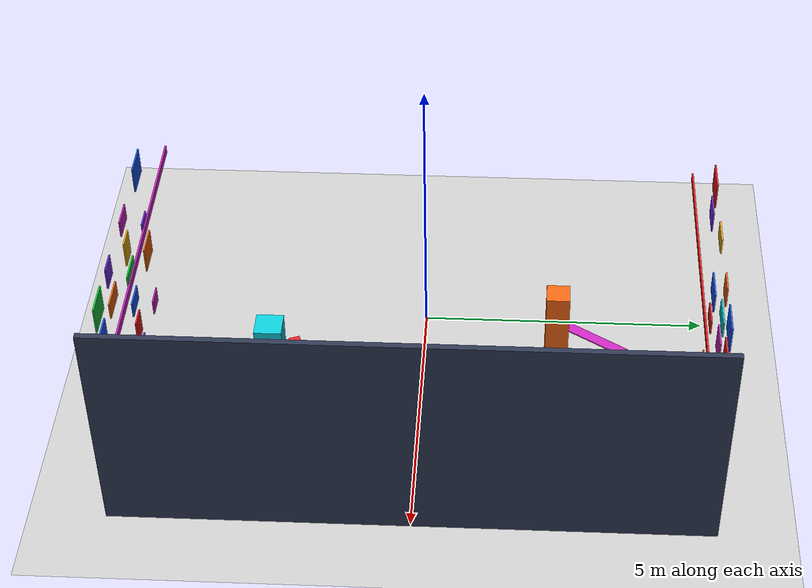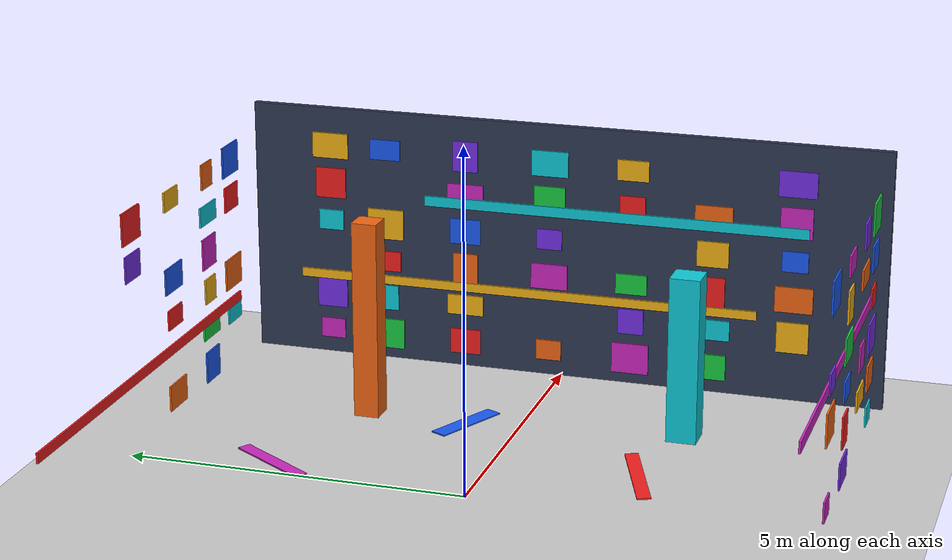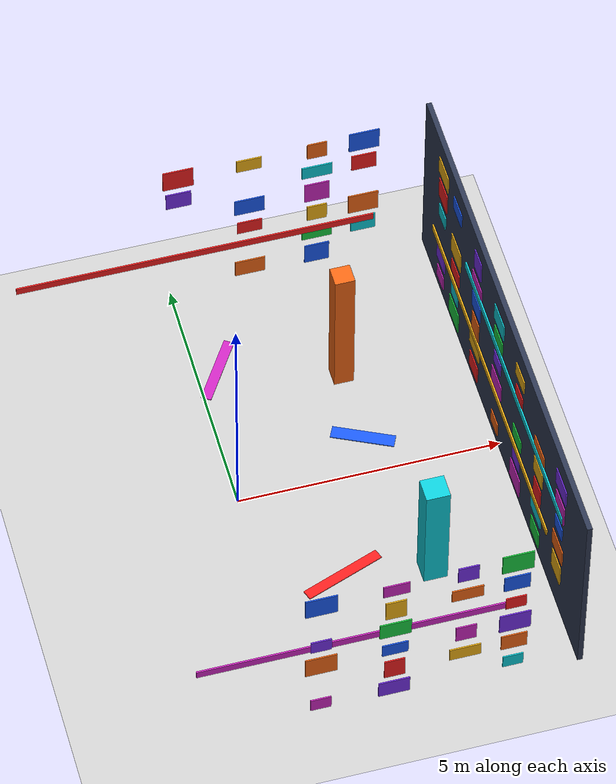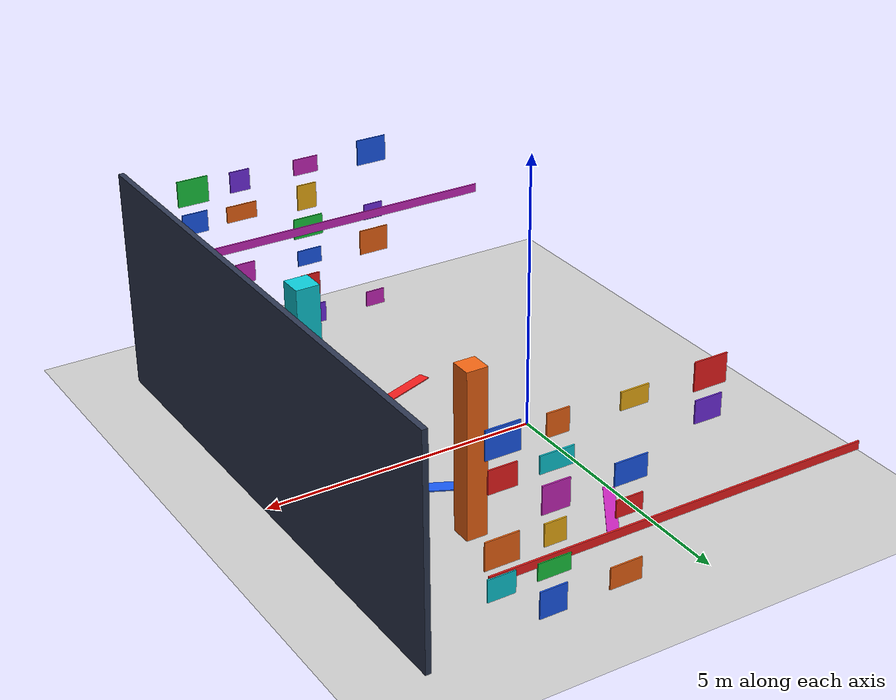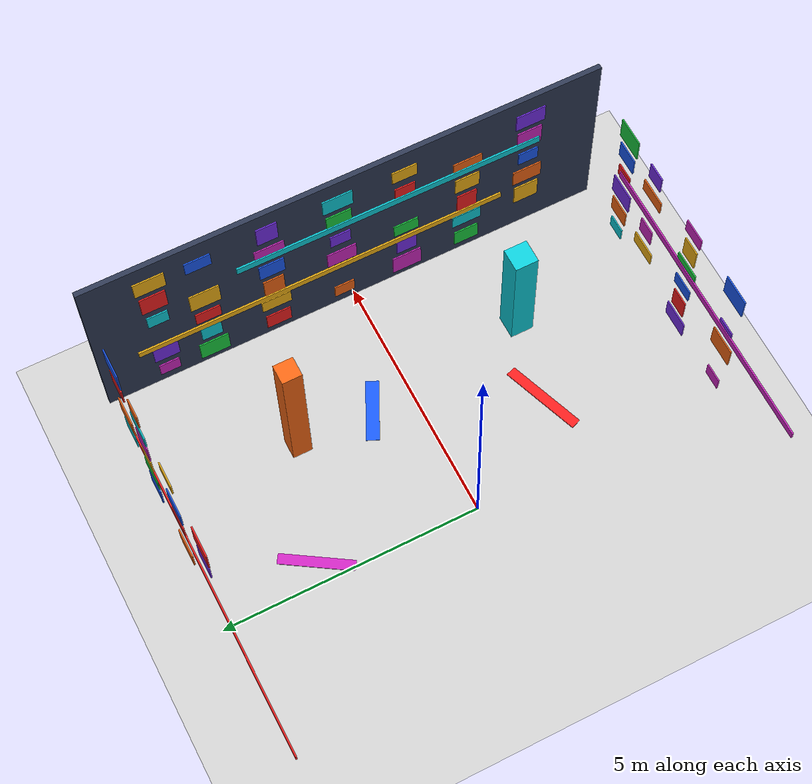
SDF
<sdf version="1.10">
 <world name="slam_room_office">
  <model name="ground_plane">
   <static>true</static>
   <link name="link">
    <collision name="collision">
     <geometry><plane><normal>0 0 1</normal><size>1 1</size></plane></geometry>
    </collision>
    <visual name="visual">
     <geometry><plane><normal>0 0 1</normal><size>500 500</size></plane></geometry>
     <material>
      <ambient>0.800000012 0.800000012 0.800000012 1</ambient>
      <diffuse>0.800000012 0.800000012 0.800000012 1</diffuse>
      <specular>0.800000012 0.800000012 0.800000012 1</specular>
     </material>
    </visual>
    <inertial>
     <mass>1</mass>
     <inertia><ixx>1</ixx><ixy>0</ixy><ixz>0</ixz><iyy>1</iyy><iyz>0</iyz><izz>1</izz></inertia>
    </inertial>
   </link>
  </model>
  <model name="slam_room_structure">
   <static>true</static>
   <link name="wall_x_pos">
    <pose>5 0 2 0 0 0</pose>
    <collision name="collision"><geometry><box><size>0.10000000000000001 10 4</size></box></geometry></collision>
    <visual name="visual">
     <geometry><box><size>0.10000000000000001 10 4</size></box></geometry>
     <material>
      <ambient>0.180000007 0.219999999 0.319999993 1</ambient>
      <diffuse>0.180000007 0.219999999 0.319999993 1</diffuse>
     </material>
    </visual>
    <inertial>
     <mass>1</mass>
     <inertia><ixx>1</ixx><ixy>0</ixy><ixz>0</ixz><iyy>1</iyy><iyz>0</iyz><izz>1</izz></inertia>
    </inertial>
   </link>
   <link name="xwall_panel_0">
    <pose>4.9400000000000004 -2.3500000000000001 0.40000000000000002 0 0 0</pose>
    <visual name="visual">
     <geometry><box><size>0.025000000000000001 0.48999999999999999 0.40000000000000002</size></box></geometry>
     <material>
      <ambient>0.100000001 0.800000012 0.25 1</ambient>
      <diffuse>0.100000001 0.800000012 0.25 1</diffuse>
     </material>
    </visual>
    <inertial>
     <mass>1</mass>
     <inertia><ixx>1</ixx><ixy>0</ixy><ixz>0</ixz><iyy>1</iyy><iyz>0</iyz><izz>1</izz></inertia>
    </inertial>
   </link>
   <link name="xwall_panel_1">
    <pose>4.9400000000000004 -1.1000000000000001 0.40000000000000002 0 0 0</pose>
    <visual name="visual">
     <geometry><box><size>0.025000000000000001 0.57999999999999996 0.47999999999999998</size></box></geometry>
     <material>
      <ambient>0.800000012 0.150000006 0.75 1</ambient>
      <diffuse>0.800000012 0.150000006 0.75 1</diffuse>
     </material>
    </visual>
    <inertial>
     <mass>1</mass>
     <inertia><ixx>1</ixx><ixy>0</ixy><ixz>0</ixz><iyy>1</iyy><iyz>0</iyz><izz>1</izz></inertia>
    </inertial>
   </link>
   <link name="xwall_panel_2">
    <pose>4.9400000000000004 0.20000000000000001 0.40000000000000002 0 0 0</pose>
    <visual name="visual">
     <geometry><box><size>0.025000000000000001 0.40000000000000002 0.32000000000000001</size></box></geometry>
     <material>
      <ambient>0.949999988 0.400000006 0.0799999982 1</ambient>
      <diffuse>0.949999988 0.400000006 0.0799999982 1</diffuse>
     </material>
    </visual>
    <inertial>
     <mass>1</mass>
     <inertia><ixx>1</ixx><ixy>0</ixy><ixz>0</ixz><iyy>1</iyy><iyz>0</iyz><izz>1</izz></inertia>
    </inertial>
   </link>
   <link name="xwall_panel_3">
    <pose>4.9400000000000004 1.55 0.40000000000000002 0 0 0</pose>
    <visual name="visual">
     <geometry><box><size>0.025000000000000001 0.48999999999999999 0.40000000000000002</size></box></geometry>
     <material>
      <ambient>0.949999988 0.119999997 0.119999997 1</ambient>
      <diffuse>0.949999988 0.119999997 0.119999997 1</diffuse>
     </material>
    </visual>
    <inertial>
     <mass>1</mass>
     <inertia><ixx>1</ixx><ixy>0</ixy><ixz>0</ixz><iyy>1</iyy><iyz>0</iyz><izz>1</izz></inertia>
    </inertial>
   </link>
   <link name="xwall_panel_4">
    <pose>4.9400000000000004 2.8500000000000001 0.40000000000000002 0 0 0</pose>
    <visual name="visual">
     <geometry><box><size>0.025000000000000001 0.57999999999999996 0.47999999999999998</size></box></geometry>
     <material>
      <ambient>0.100000001 0.800000012 0.25 1</ambient>
      <diffuse>0.100000001 0.800000012 0.25 1</diffuse>
     </material>
    </visual>
    <inertial>
     <mass>1</mass>
     <inertia><ixx>1</ixx><ixy>0</ixy><ixz>0</ixz><iyy>1</iyy><iyz>0</iyz><izz>1</izz></inertia>
    </inertial>
   </link>
   <link name="xwall_panel_5">
    <pose>4.9400000000000004 3.75 0.40000000000000002 0 0 0</pose>
    <visual name="visual">
     <geometry><box><size>0.025000000000000001 0.40000000000000002 0.32000000000000001</size></box></geometry>
     <material>
      <ambient>0.800000012 0.150000006 0.75 1</ambient>
      <diffuse>0.800000012 0.150000006 0.75 1</diffuse>
     </material>
    </visual>
    <inertial>
     <mass>1</mass>
     <inertia><ixx>1</ixx><ixy>0</ixy><ixz>0</ixz><iyy>1</iyy><iyz>0</iyz><izz>1</izz></inertia>
    </inertial>
   </link>
   <link name="xwall_panel_6">
    <pose>4.9400000000000004 -3.6000000000000001 1 0 0 0</pose>
    <visual name="visual">
     <geometry><box><size>0.025000000000000001 0.48999999999999999 0.47999999999999998</size></box></geometry>
     <material>
      <ambient>0.949999988 0.699999988 0.0799999982 1</ambient>
      <diffuse>0.949999988 0.699999988 0.0799999982 1</diffuse>
     </material>
    </visual>
    <inertial>
     <mass>1</mass>
     <inertia><ixx>1</ixx><ixy>0</ixy><ixz>0</ixz><iyy>1</iyy><iyz>0</iyz><izz>1</izz></inertia>
    </inertial>
   </link>
   <link name="xwall_panel_7">
    <pose>4.9400000000000004 -2.3500000000000001 1 0 0 0</pose>
    <visual name="visual">
     <geometry><box><size>0.025000000000000001 0.57999999999999996 0.32000000000000001</size></box></geometry>
     <material>
      <ambient>0.0500000007 0.800000012 0.850000024 1</ambient>
      <diffuse>0.0500000007 0.800000012 0.850000024 1</diffuse>
     </material>
    </visual>
    <inertial>
     <mass>1</mass>
     <inertia><ixx>1</ixx><ixy>0</ixy><ixz>0</ixz><iyy>1</iyy><iyz>0</iyz><izz>1</izz></inertia>
    </inertial>
   </link>
   <link name="xwall_panel_8">
    <pose>4.9400000000000004 -1.1000000000000001 1 0 0 0</pose>
    <visual name="visual">
     <geometry><box><size>0.025000000000000001 0.40000000000000002 0.40000000000000002</size></box></geometry>
     <material>
      <ambient>0.449999988 0.180000007 0.899999976 1</ambient>
      <diffuse>0.449999988 0.180000007 0.899999976 1</diffuse>
     </material>
    </visual>
    <inertial>
     <mass>1</mass>
     <inertia><ixx>1</ixx><ixy>0</ixy><ixz>0</ixz><iyy>1</iyy><iyz>0</iyz><izz>1</izz></inertia>
    </inertial>
   </link>
   <link name="xwall_panel_9">
    <pose>4.9400000000000004 1.55 1 0 0 0</pose>
    <visual name="visual">
     <geometry><box><size>0.025000000000000001 0.57999999999999996 0.32000000000000001</size></box></geometry>
     <material>
      <ambient>0.949999988 0.699999988 0.0799999982 1</ambient>
      <diffuse>0.949999988 0.699999988 0.0799999982 1</diffuse>
     </material>
    </visual>
    <inertial>
     <mass>1</mass>
     <inertia><ixx>1</ixx><ixy>0</ixy><ixz>0</ixz><iyy>1</iyy><iyz>0</iyz><izz>1</izz></inertia>
    </inertial>
   </link>
   <link name="xwall_panel_10">
    <pose>4.9400000000000004 2.8500000000000001 1 0 0 0</pose>
    <visual name="visual">
     <geometry><box><size>0.025000000000000001 0.40000000000000002 0.40000000000000002</size></box></geometry>
     <material>
      <ambient>0.0500000007 0.800000012 0.850000024 1</ambient>
      <diffuse>0.0500000007 0.800000012 0.850000024 1</diffuse>
     </material>
    </visual>
    <inertial>
     <mass>1</mass>
     <inertia><ixx>1</ixx><ixy>0</ixy><ixz>0</ixz><iyy>1</iyy><iyz>0</iyz><izz>1</izz></inertia>
    </inertial>
   </link>
   <link name="xwall_panel_11">
    <pose>4.9400000000000004 3.75 1 0 0 0</pose>
    <visual name="visual">
     <geometry><box><size>0.025000000000000001 0.48999999999999999 0.47999999999999998</size></box></geometry>
     <material>
      <ambient>0.449999988 0.180000007 0.899999976 1</ambient>
      <diffuse>0.449999988 0.180000007 0.899999976 1</diffuse>
     </material>
    </visual>
    <inertial>
     <mass>1</mass>
     <inertia><ixx>1</ixx><ixy>0</ixy><ixz>0</ixz><iyy>1</iyy><iyz>0</iyz><izz>1</izz></inertia>
    </inertial>
   </link>
   <link name="xwall_panel_12">
    <pose>4.9400000000000004 -3.6000000000000001 1.6000000000000001 0 0 0</pose>
    <visual name="visual">
     <geometry><box><size>0.025000000000000001 0.57999999999999996 0.40000000000000002</size></box></geometry>
     <material>
      <ambient>0.949999988 0.400000006 0.0799999982 1</ambient>
      <diffuse>0.949999988 0.400000006 0.0799999982 1</diffuse>
     </material>
    </visual>
    <inertial>
     <mass>1</mass>
     <inertia><ixx>1</ixx><ixy>0</ixy><ixz>0</ixz><iyy>1</iyy><iyz>0</iyz><izz>1</izz></inertia>
    </inertial>
   </link>
   <link name="xwall_panel_13">
    <pose>4.9400000000000004 -2.3500000000000001 1.6000000000000001 0 0 0</pose>
    <visual name="visual">
     <geometry><box><size>0.025000000000000001 0.40000000000000002 0.47999999999999998</size></box></geometry>
     <material>
      <ambient>0.949999988 0.119999997 0.119999997 1</ambient>
      <diffuse>0.949999988 0.119999997 0.119999997 1</diffuse>
     </material>
    </visual>
    <inertial>
     <mass>1</mass>
     <inertia><ixx>1</ixx><ixy>0</ixy><ixz>0</ixz><iyy>1</iyy><iyz>0</iyz><izz>1</izz></inertia>
    </inertial>
   </link>
   <link name="xwall_panel_14">
    <pose>4.9400000000000004 -1.1000000000000001 1.6000000000000001 0 0 0</pose>
    <visual name="visual">
     <geometry><box><size>0.025000000000000001 0.48999999999999999 0.32000000000000001</size></box></geometry>
     <material>
      <ambient>0.100000001 0.800000012 0.25 1</ambient>
      <diffuse>0.100000001 0.800000012 0.25 1</diffuse>
     </material>
    </visual>
    <inertial>
     <mass>1</mass>
     <inertia><ixx>1</ixx><ixy>0</ixy><ixz>0</ixz><iyy>1</iyy><iyz>0</iyz><izz>1</izz></inertia>
    </inertial>
   </link>
   <link name="xwall_panel_15">
    <pose>4.9400000000000004 0.20000000000000001 1.6000000000000001 0 0 0</pose>
    <visual name="visual">
     <geometry><box><size>0.025000000000000001 0.57999999999999996 0.40000000000000002</size></box></geometry>
     <material>
      <ambient>0.800000012 0.150000006 0.75 1</ambient>
      <diffuse>0.800000012 0.150000006 0.75 1</diffuse>
     </material>
    </visual>
    <inertial>
     <mass>1</mass>
     <inertia><ixx>1</ixx><ixy>0</ixy><ixz>0</ixz><iyy>1</iyy><iyz>0</iyz><izz>1</izz></inertia>
    </inertial>
   </link>
   <link name="xwall_panel_16">
    <pose>4.9400000000000004 1.55 1.6000000000000001 0 0 0</pose>
    <visual name="visual">
     <geometry><box><size>0.025000000000000001 0.40000000000000002 0.47999999999999998</size></box></geometry>
     <material>
      <ambient>0.949999988 0.400000006 0.0799999982 1</ambient>
      <diffuse>0.949999988 0.400000006 0.0799999982 1</diffuse>
     </material>
    </visual>
    <inertial>
     <mass>1</mass>
     <inertia><ixx>1</ixx><ixy>0</ixy><ixz>0</ixz><iyy>1</iyy><iyz>0</iyz><izz>1</izz></inertia>
    </inertial>
   </link>
   <link name="xwall_panel_17">
    <pose>4.9400000000000004 2.8500000000000001 1.6000000000000001 0 0 0</pose>
    <visual name="visual">
     <geometry><box><size>0.025000000000000001 0.48999999999999999 0.32000000000000001</size></box></geometry>
     <material>
      <ambient>0.949999988 0.119999997 0.119999997 1</ambient>
      <diffuse>0.949999988 0.119999997 0.119999997 1</diffuse>
     </material>
    </visual>
    <inertial>
     <mass>1</mass>
     <inertia><ixx>1</ixx><ixy>0</ixy><ixz>0</ixz><iyy>1</iyy><iyz>0</iyz><izz>1</izz></inertia>
    </inertial>
   </link>
   <link name="xwall_panel_18">
    <pose>4.9400000000000004 -3.6000000000000001 2.2000000000000002 0 0 0</pose>
    <visual name="visual">
     <geometry><box><size>0.025000000000000001 0.40000000000000002 0.32000000000000001</size></box></geometry>
     <material>
      <ambient>0.100000001 0.349999994 0.949999988 1</ambient>
      <diffuse>0.100000001 0.349999994 0.949999988 1</diffuse>
     </material>
    </visual>
    <inertial>
     <mass>1</mass>
     <inertia><ixx>1</ixx><ixy>0</ixy><ixz>0</ixz><iyy>1</iyy><iyz>0</iyz><izz>1</izz></inertia>
    </inertial>
   </link>
   <link name="xwall_panel_19">
    <pose>4.9400000000000004 -2.3500000000000001 2.2000000000000002 0 0 0</pose>
    <visual name="visual">
     <geometry><box><size>0.025000000000000001 0.48999999999999999 0.40000000000000002</size></box></geometry>
     <material>
      <ambient>0.949999988 0.699999988 0.0799999982 1</ambient>
      <diffuse>0.949999988 0.699999988 0.0799999982 1</diffuse>
     </material>
    </visual>
    <inertial>
     <mass>1</mass>
     <inertia><ixx>1</ixx><ixy>0</ixy><ixz>0</ixz><iyy>1</iyy><iyz>0</iyz><izz>1</izz></inertia>
    </inertial>
   </link>
   <link name="xwall_panel_20">
    <pose>4.9400000000000004 0.20000000000000001 2.2000000000000002 0 0 0</pose>
    <visual name="visual">
     <geometry><box><size>0.025000000000000001 0.40000000000000002 0.32000000000000001</size></box></geometry>
     <material>
      <ambient>0.449999988 0.180000007 0.899999976 1</ambient>
      <diffuse>0.449999988 0.180000007 0.899999976 1</diffuse>
     </material>
    </visual>
    <inertial>
     <mass>1</mass>
     <inertia><ixx>1</ixx><ixy>0</ixy><ixz>0</ixz><iyy>1</iyy><iyz>0</iyz><izz>1</izz></inertia>
    </inertial>
   </link>
   <link name="xwall_panel_21">
    <pose>4.9400000000000004 1.55 2.2000000000000002 0 0 0</pose>
    <visual name="visual">
     <geometry><box><size>0.025000000000000001 0.48999999999999999 0.40000000000000002</size></box></geometry>
     <material>
      <ambient>0.100000001 0.349999994 0.949999988 1</ambient>
      <diffuse>0.100000001 0.349999994 0.949999988 1</diffuse>
     </material>
    </visual>
    <inertial>
     <mass>1</mass>
     <inertia><ixx>1</ixx><ixy>0</ixy><ixz>0</ixz><iyy>1</iyy><iyz>0</iyz><izz>1</izz></inertia>
    </inertial>
   </link>
   <link name="xwall_panel_22">
    <pose>4.9400000000000004 2.8500000000000001 2.2000000000000002 0 0 0</pose>
    <visual name="visual">
     <geometry><box><size>0.025000000000000001 0.57999999999999996 0.47999999999999998</size></box></geometry>
     <material>
      <ambient>0.949999988 0.699999988 0.0799999982 1</ambient>
      <diffuse>0.949999988 0.699999988 0.0799999982 1</diffuse>
     </material>
    </visual>
    <inertial>
     <mass>1</mass>
     <inertia><ixx>1</ixx><ixy>0</ixy><ixz>0</ixz><iyy>1</iyy><iyz>0</iyz><izz>1</izz></inertia>
    </inertial>
   </link>
   <link name="xwall_panel_23">
    <pose>4.9400000000000004 3.75 2.2000000000000002 0 0 0</pose>
    <visual name="visual">
     <geometry><box><size>0.025000000000000001 0.40000000000000002 0.32000000000000001</size></box></geometry>
     <material>
      <ambient>0.0500000007 0.800000012 0.850000024 1</ambient>
      <diffuse>0.0500000007 0.800000012 0.850000024 1</diffuse>
     </material>
    </visual>
    <inertial>
     <mass>1</mass>
     <inertia><ixx>1</ixx><ixy>0</ixy><ixz>0</ixz><iyy>1</iyy><iyz>0</iyz><izz>1</izz></inertia>
    </inertial>
   </link>
   <link name="xwall_panel_24">
    <pose>4.9400000000000004 -3.6000000000000001 2.7999999999999998 0 0 0</pose>
    <visual name="visual">
     <geometry><box><size>0.025000000000000001 0.48999999999999999 0.47999999999999998</size></box></geometry>
     <material>
      <ambient>0.800000012 0.150000006 0.75 1</ambient>
      <diffuse>0.800000012 0.150000006 0.75 1</diffuse>
     </material>
    </visual>
    <inertial>
     <mass>1</mass>
     <inertia><ixx>1</ixx><ixy>0</ixy><ixz>0</ixz><iyy>1</iyy><iyz>0</iyz><izz>1</izz></inertia>
    </inertial>
   </link>
   <link name="xwall_panel_25">
    <pose>4.9400000000000004 -2.3500000000000001 2.7999999999999998 0 0 0</pose>
    <visual name="visual">
     <geometry><box><size>0.025000000000000001 0.57999999999999996 0.32000000000000001</size></box></geometry>
     <material>
      <ambient>0.949999988 0.400000006 0.0799999982 1</ambient>
      <diffuse>0.949999988 0.400000006 0.0799999982 1</diffuse>
     </material>
    </visual>
    <inertial>
     <mass>1</mass>
     <inertia><ixx>1</ixx><ixy>0</ixy><ixz>0</ixz><iyy>1</iyy><iyz>0</iyz><izz>1</izz></inertia>
    </inertial>
   </link>
   <link name="xwall_panel_26">
    <pose>4.9400000000000004 -1.1000000000000001 2.7999999999999998 0 0 0</pose>
    <visual name="visual">
     <geometry><box><size>0.025000000000000001 0.40000000000000002 0.40000000000000002</size></box></geometry>
     <material>
      <ambient>0.949999988 0.119999997 0.119999997 1</ambient>
      <diffuse>0.949999988 0.119999997 0.119999997 1</diffuse>
     </material>
    </visual>
    <inertial>
     <mass>1</mass>
     <inertia><ixx>1</ixx><ixy>0</ixy><ixz>0</ixz><iyy>1</iyy><iyz>0</iyz><izz>1</izz></inertia>
    </inertial>
   </link>
   <link name="xwall_panel_27">
    <pose>4.9400000000000004 0.20000000000000001 2.7999999999999998 0 0 0</pose>
    <visual name="visual">
     <geometry><box><size>0.025000000000000001 0.48999999999999999 0.47999999999999998</size></box></geometry>
     <material>
      <ambient>0.100000001 0.800000012 0.25 1</ambient>
      <diffuse>0.100000001 0.800000012 0.25 1</diffuse>
     </material>
    </visual>
    <inertial>
     <mass>1</mass>
     <inertia><ixx>1</ixx><ixy>0</ixy><ixz>0</ixz><iyy>1</iyy><iyz>0</iyz><izz>1</izz></inertia>
    </inertial>
   </link>
   <link name="xwall_panel_28">
    <pose>4.9400000000000004 1.55 2.7999999999999998 0 0 0</pose>
    <visual name="visual">
     <geometry><box><size>0.025000000000000001 0.57999999999999996 0.32000000000000001</size></box></geometry>
     <material>
      <ambient>0.800000012 0.150000006 0.75 1</ambient>
      <diffuse>0.800000012 0.150000006 0.75 1</diffuse>
     </material>
    </visual>
    <inertial>
     <mass>1</mass>
     <inertia><ixx>1</ixx><ixy>0</ixy><ixz>0</ixz><iyy>1</iyy><iyz>0</iyz><izz>1</izz></inertia>
    </inertial>
   </link>
   <link name="xwall_panel_29">
    <pose>4.9400000000000004 3.75 2.7999999999999998 0 0 0</pose>
    <visual name="visual">
     <geometry><box><size>0.025000000000000001 0.48999999999999999 0.47999999999999998</size></box></geometry>
     <material>
      <ambient>0.949999988 0.119999997 0.119999997 1</ambient>
      <diffuse>0.949999988 0.119999997 0.119999997 1</diffuse>
     </material>
    </visual>
    <inertial>
     <mass>1</mass>
     <inertia><ixx>1</ixx><ixy>0</ixy><ixz>0</ixz><iyy>1</iyy><iyz>0</iyz><izz>1</izz></inertia>
    </inertial>
   </link>
   <link name="xwall_panel_30">
    <pose>4.9400000000000004 -3.6000000000000001 3.3999999999999999 0 0 0</pose>
    <visual name="visual">
     <geometry><box><size>0.025000000000000001 0.57999999999999996 0.40000000000000002</size></box></geometry>
     <material>
      <ambient>0.449999988 0.180000007 0.899999976 1</ambient>
      <diffuse>0.449999988 0.180000007 0.899999976 1</diffuse>
     </material>
    </visual>
    <inertial>
     <mass>1</mass>
     <inertia><ixx>1</ixx><ixy>0</ixy><ixz>0</ixz><iyy>1</iyy><iyz>0</iyz><izz>1</izz></inertia>
    </inertial>
   </link>
   <link name="xwall_panel_31">
    <pose>4.9400000000000004 -1.1000000000000001 3.3999999999999999 0 0 0</pose>
    <visual name="visual">
     <geometry><box><size>0.025000000000000001 0.48999999999999999 0.32000000000000001</size></box></geometry>
     <material>
      <ambient>0.949999988 0.699999988 0.0799999982 1</ambient>
      <diffuse>0.949999988 0.699999988 0.0799999982 1</diffuse>
     </material>
    </visual>
    <inertial>
     <mass>1</mass>
     <inertia><ixx>1</ixx><ixy>0</ixy><ixz>0</ixz><iyy>1</iyy><iyz>0</iyz><izz>1</izz></inertia>
    </inertial>
   </link>
   <link name="xwall_panel_32">
    <pose>4.9400000000000004 0.20000000000000001 3.3999999999999999 0 0 0</pose>
    <visual name="visual">
     <geometry><box><size>0.025000000000000001 0.57999999999999996 0.40000000000000002</size></box></geometry>
     <material>
      <ambient>0.0500000007 0.800000012 0.850000024 1</ambient>
      <diffuse>0.0500000007 0.800000012 0.850000024 1</diffuse>
     </material>
    </visual>
    <inertial>
     <mass>1</mass>
     <inertia><ixx>1</ixx><ixy>0</ixy><ixz>0</ixz><iyy>1</iyy><iyz>0</iyz><izz>1</izz></inertia>
    </inertial>
   </link>
   <link name="xwall_panel_33">
    <pose>4.9400000000000004 1.55 3.3999999999999999 0 0 0</pose>
    <visual name="visual">
     <geometry><box><size>0.025000000000000001 0.40000000000000002 0.47999999999999998</size></box></geometry>
     <material>
      <ambient>0.449999988 0.180000007 0.899999976 1</ambient>
      <diffuse>0.449999988 0.180000007 0.899999976 1</diffuse>
     </material>
    </visual>
    <inertial>
     <mass>1</mass>
     <inertia><ixx>1</ixx><ixy>0</ixy><ixz>0</ixz><iyy>1</iyy><iyz>0</iyz><izz>1</izz></inertia>
    </inertial>
   </link>
   <link name="xwall_panel_34">
    <pose>4.9400000000000004 2.8500000000000001 3.3999999999999999 0 0 0</pose>
    <visual name="visual">
     <geometry><box><size>0.025000000000000001 0.48999999999999999 0.32000000000000001</size></box></geometry>
     <material>
      <ambient>0.100000001 0.349999994 0.949999988 1</ambient>
      <diffuse>0.100000001 0.349999994 0.949999988 1</diffuse>
     </material>
    </visual>
    <inertial>
     <mass>1</mass>
     <inertia><ixx>1</ixx><ixy>0</ixy><ixz>0</ixz><iyy>1</iyy><iyz>0</iyz><izz>1</izz></inertia>
    </inertial>
   </link>
   <link name="xwall_panel_35">
    <pose>4.9400000000000004 3.75 3.3999999999999999 0 0 0</pose>
    <visual name="visual">
     <geometry><box><size>0.025000000000000001 0.57999999999999996 0.40000000000000002</size></box></geometry>
     <material>
      <ambient>0.949999988 0.699999988 0.0799999982 1</ambient>
      <diffuse>0.949999988 0.699999988 0.0799999982 1</diffuse>
     </material>
    </visual>
    <inertial>
     <mass>1</mass>
     <inertia><ixx>1</ixx><ixy>0</ixy><ixz>0</ixz><iyy>1</iyy><iyz>0</iyz><izz>1</izz></inertia>
    </inertial>
   </link>
   <link name="ywall_panel_75">
    <pose>1.55 4.9400000000000004 0.40000000000000002 0 0 0</pose>
    <visual name="visual">
     <geometry><box><size>0.57999999999999996 0.025000000000000001 0.39000000000000001</size></box></geometry>
     <material>
      <ambient>0.949999988 0.400000006 0.0799999982 1</ambient>
      <diffuse>0.949999988 0.400000006 0.0799999982 1</diffuse>
     </material>
    </visual>
    <inertial>
     <mass>1</mass>
     <inertia><ixx>1</ixx><ixy>0</ixy><ixz>0</ixz><iyy>1</iyy><iyz>0</iyz><izz>1</izz></inertia>
    </inertial>
   </link>
   <link name="ywall_panel_76">
    <pose>2.8500000000000001 4.9400000000000004 0.40000000000000002 0 0 0</pose>
    <visual name="visual">
     <geometry><box><size>0.47999999999999998 0.025000000000000001 0.47999999999999998</size></box></geometry>
     <material>
      <ambient>0.100000001 0.349999994 0.949999988 1</ambient>
      <diffuse>0.100000001 0.349999994 0.949999988 1</diffuse>
     </material>
    </visual>
    <inertial>
     <mass>1</mass>
     <inertia><ixx>1</ixx><ixy>0</ixy><ixz>0</ixz><iyy>1</iyy><iyz>0</iyz><izz>1</izz></inertia>
    </inertial>
   </link>
   <link name="ywall_panel_81">
    <pose>2.8500000000000001 4.9400000000000004 1 0 0 0</pose>
    <visual name="visual">
     <geometry><box><size>0.57999999999999996 0.025000000000000001 0.29999999999999999</size></box></geometry>
     <material>
      <ambient>0.100000001 0.800000012 0.25 1</ambient>
      <diffuse>0.100000001 0.800000012 0.25 1</diffuse>
     </material>
    </visual>
    <inertial>
     <mass>1</mass>
     <inertia><ixx>1</ixx><ixy>0</ixy><ixz>0</ixz><iyy>1</iyy><iyz>0</iyz><izz>1</izz></inertia>
    </inertial>
   </link>
   <link name="ywall_panel_82">
    <pose>3.75 4.9400000000000004 1 0 0 0</pose>
    <visual name="visual">
     <geometry><box><size>0.47999999999999998 0.025000000000000001 0.39000000000000001</size></box></geometry>
     <material>
      <ambient>0.0500000007 0.800000012 0.850000024 1</ambient>
      <diffuse>0.0500000007 0.800000012 0.850000024 1</diffuse>
     </material>
    </visual>
    <inertial>
     <mass>1</mass>
     <inertia><ixx>1</ixx><ixy>0</ixy><ixz>0</ixz><iyy>1</iyy><iyz>0</iyz><izz>1</izz></inertia>
    </inertial>
   </link>
   <link name="ywall_panel_86">
    <pose>1.55 4.9400000000000004 1.6000000000000001 0 0 0</pose>
    <visual name="visual">
     <geometry><box><size>0.47999999999999998 0.025000000000000001 0.29999999999999999</size></box></geometry>
     <material>
      <ambient>0.949999988 0.119999997 0.119999997 1</ambient>
      <diffuse>0.949999988 0.119999997 0.119999997 1</diffuse>
     </material>
    </visual>
    <inertial>
     <mass>1</mass>
     <inertia><ixx>1</ixx><ixy>0</ixy><ixz>0</ixz><iyy>1</iyy><iyz>0</iyz><izz>1</izz></inertia>
    </inertial>
   </link>
   <link name="ywall_panel_87">
    <pose>2.8500000000000001 4.9400000000000004 1.6000000000000001 0 0 0</pose>
    <visual name="visual">
     <geometry><box><size>0.38 0.025000000000000001 0.39000000000000001</size></box></geometry>
     <material>
      <ambient>0.949999988 0.699999988 0.0799999982 1</ambient>
      <diffuse>0.949999988 0.699999988 0.0799999982 1</diffuse>
     </material>
    </visual>
    <inertial>
     <mass>1</mass>
     <inertia><ixx>1</ixx><ixy>0</ixy><ixz>0</ixz><iyy>1</iyy><iyz>0</iyz><izz>1</izz></inertia>
    </inertial>
   </link>
   <link name="ywall_panel_88">
    <pose>3.75 4.9400000000000004 1.6000000000000001 0 0 0</pose>
    <visual name="visual">
     <geometry><box><size>0.57999999999999996 0.025000000000000001 0.47999999999999998</size></box></geometry>
     <material>
      <ambient>0.949999988 0.400000006 0.0799999982 1</ambient>
      <diffuse>0.949999988 0.400000006 0.0799999982 1</diffuse>
     </material>
    </visual>
    <inertial>
     <mass>1</mass>
     <inertia><ixx>1</ixx><ixy>0</ixy><ixz>0</ixz><iyy>1</iyy><iyz>0</iyz><izz>1</izz></inertia>
    </inertial>
   </link>
   <link name="ywall_panel_92">
    <pose>1.55 4.9400000000000004 2.2000000000000002 0 0 0</pose>
    <visual name="visual">
     <geometry><box><size>0.57999999999999996 0.025000000000000001 0.39000000000000001</size></box></geometry>
     <material>
      <ambient>0.100000001 0.349999994 0.949999988 1</ambient>
      <diffuse>0.100000001 0.349999994 0.949999988 1</diffuse>
     </material>
    </visual>
    <inertial>
     <mass>1</mass>
     <inertia><ixx>1</ixx><ixy>0</ixy><ixz>0</ixz><iyy>1</iyy><iyz>0</iyz><izz>1</izz></inertia>
    </inertial>
   </link>
   <link name="ywall_panel_93">
    <pose>2.8500000000000001 4.9400000000000004 2.2000000000000002 0 0 0</pose>
    <visual name="visual">
     <geometry><box><size>0.47999999999999998 0.025000000000000001 0.47999999999999998</size></box></geometry>
     <material>
      <ambient>0.800000012 0.150000006 0.75 1</ambient>
      <diffuse>0.800000012 0.150000006 0.75 1</diffuse>
     </material>
    </visual>
    <inertial>
     <mass>1</mass>
     <inertia><ixx>1</ixx><ixy>0</ixy><ixz>0</ixz><iyy>1</iyy><iyz>0</iyz><izz>1</izz></inertia>
    </inertial>
   </link>
   <link name="ywall_panel_97">
    <pose>0.20000000000000001 4.9400000000000004 2.7999999999999998 0 0 0</pose>
    <visual name="visual">
     <geometry><box><size>0.47999999999999998 0.025000000000000001 0.39000000000000001</size></box></geometry>
     <material>
      <ambient>0.449999988 0.180000007 0.899999976 1</ambient>
      <diffuse>0.449999988 0.180000007 0.899999976 1</diffuse>
     </material>
    </visual>
    <inertial>
     <mass>1</mass>
     <inertia><ixx>1</ixx><ixy>0</ixy><ixz>0</ixz><iyy>1</iyy><iyz>0</iyz><izz>1</izz></inertia>
    </inertial>
   </link>
   <link name="ywall_panel_98">
    <pose>2.8500000000000001 4.9400000000000004 2.7999999999999998 0 0 0</pose>
    <visual name="visual">
     <geometry><box><size>0.57999999999999996 0.025000000000000001 0.29999999999999999</size></box></geometry>
     <material>
      <ambient>0.0500000007 0.800000012 0.850000024 1</ambient>
      <diffuse>0.0500000007 0.800000012 0.850000024 1</diffuse>
     </material>
    </visual>
    <inertial>
     <mass>1</mass>
     <inertia><ixx>1</ixx><ixy>0</ixy><ixz>0</ixz><iyy>1</iyy><iyz>0</iyz><izz>1</izz></inertia>
    </inertial>
   </link>
   <link name="ywall_panel_99">
    <pose>3.75 4.9400000000000004 2.7999999999999998 0 0 0</pose>
    <visual name="visual">
     <geometry><box><size>0.47999999999999998 0.025000000000000001 0.39000000000000001</size></box></geometry>
     <material>
      <ambient>0.949999988 0.119999997 0.119999997 1</ambient>
      <diffuse>0.949999988 0.119999997 0.119999997 1</diffuse>
     </material>
    </visual>
    <inertial>
     <mass>1</mass>
     <inertia><ixx>1</ixx><ixy>0</ixy><ixz>0</ixz><iyy>1</iyy><iyz>0</iyz><izz>1</izz></inertia>
    </inertial>
   </link>
   <link name="ywall_panel_102">
    <pose>0.20000000000000001 4.9400000000000004 3.3999999999999999 0 0 0</pose>
    <visual name="visual">
     <geometry><box><size>0.57999999999999996 0.025000000000000001 0.47999999999999998</size></box></geometry>
     <material>
      <ambient>0.949999988 0.119999997 0.119999997 1</ambient>
      <diffuse>0.949999988 0.119999997 0.119999997 1</diffuse>
     </material>
    </visual>
    <inertial>
     <mass>1</mass>
     <inertia><ixx>1</ixx><ixy>0</ixy><ixz>0</ixz><iyy>1</iyy><iyz>0</iyz><izz>1</izz></inertia>
    </inertial>
   </link>
   <link name="ywall_panel_103">
    <pose>1.55 4.9400000000000004 3.3999999999999999 0 0 0</pose>
    <visual name="visual">
     <geometry><box><size>0.47999999999999998 0.025000000000000001 0.29999999999999999</size></box></geometry>
     <material>
      <ambient>0.949999988 0.699999988 0.0799999982 1</ambient>
      <diffuse>0.949999988 0.699999988 0.0799999982 1</diffuse>
     </material>
    </visual>
    <inertial>
     <mass>1</mass>
     <inertia><ixx>1</ixx><ixy>0</ixy><ixz>0</ixz><iyy>1</iyy><iyz>0</iyz><izz>1</izz></inertia>
    </inertial>
   </link>
   <link name="ywall_panel_104">
    <pose>2.8500000000000001 4.9400000000000004 3.3999999999999999 0 0 0</pose>
    <visual name="visual">
     <geometry><box><size>0.38 0.025000000000000001 0.39000000000000001</size></box></geometry>
     <material>
      <ambient>0.949999988 0.400000006 0.0799999982 1</ambient>
      <diffuse>0.949999988 0.400000006 0.0799999982 1</diffuse>
     </material>
    </visual>
    <inertial>
     <mass>1</mass>
     <inertia><ixx>1</ixx><ixy>0</ixy><ixz>0</ixz><iyy>1</iyy><iyz>0</iyz><izz>1</izz></inertia>
    </inertial>
   </link>
   <link name="ywall_panel_105">
    <pose>3.75 4.9400000000000004 3.3999999999999999 0 0 0</pose>
    <visual name="visual">
     <geometry><box><size>0.57999999999999996 0.025000000000000001 0.47999999999999998</size></box></geometry>
     <material>
      <ambient>0.100000001 0.349999994 0.949999988 1</ambient>
      <diffuse>0.100000001 0.349999994 0.949999988 1</diffuse>
     </material>
    </visual>
    <inertial>
     <mass>1</mass>
     <inertia><ixx>1</ixx><ixy>0</ixy><ixz>0</ixz><iyy>1</iyy><iyz>0</iyz><izz>1</izz></inertia>
    </inertial>
   </link>
   <link name="ywall_panel_109">
    <pose>0.20000000000000001 -4.9400000000000004 0.40000000000000002 0 0 0</pose>
    <visual name="visual">
     <geometry><box><size>0.38 0.025000000000000001 0.29999999999999999</size></box></geometry>
     <material>
      <ambient>0.800000012 0.150000006 0.75 1</ambient>
      <diffuse>0.800000012 0.150000006 0.75 1</diffuse>
     </material>
    </visual>
    <inertial>
     <mass>1</mass>
     <inertia><ixx>1</ixx><ixy>0</ixy><ixz>0</ixz><iyy>1</iyy><iyz>0</iyz><izz>1</izz></inertia>
    </inertial>
   </link>
   <link name="ywall_panel_110">
    <pose>1.55 -4.9400000000000004 0.40000000000000002 0 0 0</pose>
    <visual name="visual">
     <geometry><box><size>0.57999999999999996 0.025000000000000001 0.39000000000000001</size></box></geometry>
     <material>
      <ambient>0.449999988 0.180000007 0.899999976 1</ambient>
      <diffuse>0.449999988 0.180000007 0.899999976 1</diffuse>
     </material>
    </visual>
    <inertial>
     <mass>1</mass>
     <inertia><ixx>1</ixx><ixy>0</ixy><ixz>0</ixz><iyy>1</iyy><iyz>0</iyz><izz>1</izz></inertia>
    </inertial>
   </link>
   <link name="ywall_panel_111">
    <pose>3.75 -4.9400000000000004 0.40000000000000002 0 0 0</pose>
    <visual name="visual">
     <geometry><box><size>0.38 0.025000000000000001 0.29999999999999999</size></box></geometry>
     <material>
      <ambient>0.0500000007 0.800000012 0.850000024 1</ambient>
      <diffuse>0.0500000007 0.800000012 0.850000024 1</diffuse>
     </material>
    </visual>
    <inertial>
     <mass>1</mass>
     <inertia><ixx>1</ixx><ixy>0</ixy><ixz>0</ixz><iyy>1</iyy><iyz>0</iyz><izz>1</izz></inertia>
    </inertial>
   </link>
   <link name="ywall_panel_115">
    <pose>1.55 -4.9400000000000004 1 0 0 0</pose>
    <visual name="visual">
     <geometry><box><size>0.38 0.025000000000000001 0.47999999999999998</size></box></geometry>
     <material>
      <ambient>0.949999988 0.119999997 0.119999997 1</ambient>
      <diffuse>0.949999988 0.119999997 0.119999997 1</diffuse>
     </material>
    </visual>
    <inertial>
     <mass>1</mass>
     <inertia><ixx>1</ixx><ixy>0</ixy><ixz>0</ixz><iyy>1</iyy><iyz>0</iyz><izz>1</izz></inertia>
    </inertial>
   </link>
   <link name="ywall_panel_116">
    <pose>2.8500000000000001 -4.9400000000000004 1 0 0 0</pose>
    <visual name="visual">
     <geometry><box><size>0.57999999999999996 0.025000000000000001 0.29999999999999999</size></box></geometry>
     <material>
      <ambient>0.949999988 0.699999988 0.0799999982 1</ambient>
      <diffuse>0.949999988 0.699999988 0.0799999982 1</diffuse>
     </material>
    </visual>
    <inertial>
     <mass>1</mass>
     <inertia><ixx>1</ixx><ixy>0</ixy><ixz>0</ixz><iyy>1</iyy><iyz>0</iyz><izz>1</izz></inertia>
    </inertial>
   </link>
   <link name="ywall_panel_117">
    <pose>3.75 -4.9400000000000004 1 0 0 0</pose>
    <visual name="visual">
     <geometry><box><size>0.47999999999999998 0.025000000000000001 0.39000000000000001</size></box></geometry>
     <material>
      <ambient>0.949999988 0.400000006 0.0799999982 1</ambient>
      <diffuse>0.949999988 0.400000006 0.0799999982 1</diffuse>
     </material>
    </visual>
    <inertial>
     <mass>1</mass>
     <inertia><ixx>1</ixx><ixy>0</ixy><ixz>0</ixz><iyy>1</iyy><iyz>0</iyz><izz>1</izz></inertia>
    </inertial>
   </link>
   <link name="ywall_panel_120">
    <pose>0.20000000000000001 -4.9400000000000004 1.6000000000000001 0 0 0</pose>
    <visual name="visual">
     <geometry><box><size>0.57999999999999996 0.025000000000000001 0.47999999999999998</size></box></geometry>
     <material>
      <ambient>0.949999988 0.400000006 0.0799999982 1</ambient>
      <diffuse>0.949999988 0.400000006 0.0799999982 1</diffuse>
     </material>
    </visual>
    <inertial>
     <mass>1</mass>
     <inertia><ixx>1</ixx><ixy>0</ixy><ixz>0</ixz><iyy>1</iyy><iyz>0</iyz><izz>1</izz></inertia>
    </inertial>
   </link>
   <link name="ywall_panel_121">
    <pose>1.55 -4.9400000000000004 1.6000000000000001 0 0 0</pose>
    <visual name="visual">
     <geometry><box><size>0.47999999999999998 0.025000000000000001 0.29999999999999999</size></box></geometry>
     <material>
      <ambient>0.100000001 0.349999994 0.949999988 1</ambient>
      <diffuse>0.100000001 0.349999994 0.949999988 1</diffuse>
     </material>
    </visual>
    <inertial>
     <mass>1</mass>
     <inertia><ixx>1</ixx><ixy>0</ixy><ixz>0</ixz><iyy>1</iyy><iyz>0</iyz><izz>1</izz></inertia>
    </inertial>
   </link>
   <link name="ywall_panel_122">
    <pose>2.8500000000000001 -4.9400000000000004 1.6000000000000001 0 0 0</pose>
    <visual name="visual">
     <geometry><box><size>0.38 0.025000000000000001 0.39000000000000001</size></box></geometry>
     <material>
      <ambient>0.800000012 0.150000006 0.75 1</ambient>
      <diffuse>0.800000012 0.150000006 0.75 1</diffuse>
     </material>
    </visual>
    <inertial>
     <mass>1</mass>
     <inertia><ixx>1</ixx><ixy>0</ixy><ixz>0</ixz><iyy>1</iyy><iyz>0</iyz><izz>1</izz></inertia>
    </inertial>
   </link>
   <link name="ywall_panel_123">
    <pose>3.75 -4.9400000000000004 1.6000000000000001 0 0 0</pose>
    <visual name="visual">
     <geometry><box><size>0.57999999999999996 0.025000000000000001 0.47999999999999998</size></box></geometry>
     <material>
      <ambient>0.449999988 0.180000007 0.899999976 1</ambient>
      <diffuse>0.449999988 0.180000007 0.899999976 1</diffuse>
     </material>
    </visual>
    <inertial>
     <mass>1</mass>
     <inertia><ixx>1</ixx><ixy>0</ixy><ixz>0</ixz><iyy>1</iyy><iyz>0</iyz><izz>1</izz></inertia>
    </inertial>
   </link>
   <link name="ywall_panel_127">
    <pose>0.20000000000000001 -4.9400000000000004 2.2000000000000002 0 0 0</pose>
    <visual name="visual">
     <geometry><box><size>0.38 0.025000000000000001 0.29999999999999999</size></box></geometry>
     <material>
      <ambient>0.449999988 0.180000007 0.899999976 1</ambient>
      <diffuse>0.449999988 0.180000007 0.899999976 1</diffuse>
     </material>
    </visual>
    <inertial>
     <mass>1</mass>
     <inertia><ixx>1</ixx><ixy>0</ixy><ixz>0</ixz><iyy>1</iyy><iyz>0</iyz><izz>1</izz></inertia>
    </inertial>
   </link>
   <link name="ywall_panel_128">
    <pose>1.55 -4.9400000000000004 2.2000000000000002 0 0 0</pose>
    <visual name="visual">
     <geometry><box><size>0.57999999999999996 0.025000000000000001 0.39000000000000001</size></box></geometry>
     <material>
      <ambient>0.100000001 0.800000012 0.25 1</ambient>
      <diffuse>0.100000001 0.800000012 0.25 1</diffuse>
     </material>
    </visual>
    <inertial>
     <mass>1</mass>
     <inertia><ixx>1</ixx><ixy>0</ixy><ixz>0</ixz><iyy>1</iyy><iyz>0</iyz><izz>1</izz></inertia>
    </inertial>
   </link>
   <link name="ywall_panel_129">
    <pose>3.75 -4.9400000000000004 2.2000000000000002 0 0 0</pose>
    <visual name="visual">
     <geometry><box><size>0.38 0.025000000000000001 0.29999999999999999</size></box></geometry>
     <material>
      <ambient>0.949999988 0.119999997 0.119999997 1</ambient>
      <diffuse>0.949999988 0.119999997 0.119999997 1</diffuse>
     </material>
    </visual>
    <inertial>
     <mass>1</mass>
     <inertia><ixx>1</ixx><ixy>0</ixy><ixz>0</ixz><iyy>1</iyy><iyz>0</iyz><izz>1</izz></inertia>
    </inertial>
   </link>
   <link name="ywall_panel_133">
    <pose>1.55 -4.9400000000000004 2.7999999999999998 0 0 0</pose>
    <visual name="visual">
     <geometry><box><size>0.38 0.025000000000000001 0.47999999999999998</size></box></geometry>
     <material>
      <ambient>0.949999988 0.699999988 0.0799999982 1</ambient>
      <diffuse>0.949999988 0.699999988 0.0799999982 1</diffuse>
     </material>
    </visual>
    <inertial>
     <mass>1</mass>
     <inertia><ixx>1</ixx><ixy>0</ixy><ixz>0</ixz><iyy>1</iyy><iyz>0</iyz><izz>1</izz></inertia>
    </inertial>
   </link>
   <link name="ywall_panel_134">
    <pose>2.8500000000000001 -4.9400000000000004 2.7999999999999998 0 0 0</pose>
    <visual name="visual">
     <geometry><box><size>0.57999999999999996 0.025000000000000001 0.29999999999999999</size></box></geometry>
     <material>
      <ambient>0.949999988 0.400000006 0.0799999982 1</ambient>
      <diffuse>0.949999988 0.400000006 0.0799999982 1</diffuse>
     </material>
    </visual>
    <inertial>
     <mass>1</mass>
     <inertia><ixx>1</ixx><ixy>0</ixy><ixz>0</ixz><iyy>1</iyy><iyz>0</iyz><izz>1</izz></inertia>
    </inertial>
   </link>
   <link name="ywall_panel_135">
    <pose>3.75 -4.9400000000000004 2.7999999999999998 0 0 0</pose>
    <visual name="visual">
     <geometry><box><size>0.47999999999999998 0.025000000000000001 0.39000000000000001</size></box></geometry>
     <material>
      <ambient>0.100000001 0.349999994 0.949999988 1</ambient>
      <diffuse>0.100000001 0.349999994 0.949999988 1</diffuse>
     </material>
    </visual>
    <inertial>
     <mass>1</mass>
     <inertia><ixx>1</ixx><ixy>0</ixy><ixz>0</ixz><iyy>1</iyy><iyz>0</iyz><izz>1</izz></inertia>
    </inertial>
   </link>
   <link name="ywall_panel_138">
    <pose>0.20000000000000001 -4.9400000000000004 3.3999999999999999 0 0 0</pose>
    <visual name="visual">
     <geometry><box><size>0.57999999999999996 0.025000000000000001 0.47999999999999998</size></box></geometry>
     <material>
      <ambient>0.100000001 0.349999994 0.949999988 1</ambient>
      <diffuse>0.100000001 0.349999994 0.949999988 1</diffuse>
     </material>
    </visual>
    <inertial>
     <mass>1</mass>
     <inertia><ixx>1</ixx><ixy>0</ixy><ixz>0</ixz><iyy>1</iyy><iyz>0</iyz><izz>1</izz></inertia>
    </inertial>
   </link>
   <link name="ywall_panel_139">
    <pose>1.55 -4.9400000000000004 3.3999999999999999 0 0 0</pose>
    <visual name="visual">
     <geometry><box><size>0.47999999999999998 0.025000000000000001 0.29999999999999999</size></box></geometry>
     <material>
      <ambient>0.800000012 0.150000006 0.75 1</ambient>
      <diffuse>0.800000012 0.150000006 0.75 1</diffuse>
     </material>
    </visual>
    <inertial>
     <mass>1</mass>
     <inertia><ixx>1</ixx><ixy>0</ixy><ixz>0</ixz><iyy>1</iyy><iyz>0</iyz><izz>1</izz></inertia>
    </inertial>
   </link>
   <link name="ywall_panel_140">
    <pose>2.8500000000000001 -4.9400000000000004 3.3999999999999999 0 0 0</pose>
    <visual name="visual">
     <geometry><box><size>0.38 0.025000000000000001 0.39000000000000001</size></box></geometry>
     <material>
      <ambient>0.449999988 0.180000007 0.899999976 1</ambient>
      <diffuse>0.449999988 0.180000007 0.899999976 1</diffuse>
     </material>
    </visual>
    <inertial>
     <mass>1</mass>
     <inertia><ixx>1</ixx><ixy>0</ixy><ixz>0</ixz><iyy>1</iyy><iyz>0</iyz><izz>1</izz></inertia>
    </inertial>
   </link>
   <link name="ywall_panel_141">
    <pose>3.75 -4.9400000000000004 3.3999999999999999 0 0 0</pose>
    <visual name="visual">
     <geometry><box><size>0.57999999999999996 0.025000000000000001 0.47999999999999998</size></box></geometry>
     <material>
      <ambient>0.100000001 0.800000012 0.25 1</ambient>
      <diffuse>0.100000001 0.800000012 0.25 1</diffuse>
     </material>
    </visual>
    <inertial>
     <mass>1</mass>
     <inertia><ixx>1</ixx><ixy>0</ixy><ixz>0</ixz><iyy>1</iyy><iyz>0</iyz><izz>1</izz></inertia>
    </inertial>
   </link>
   <link name="stripe_xp_1">
    <pose>4.9199999999999999 0.59999999999999998 1.3 0 0 0</pose>
    <visual name="visual">
     <geometry><box><size>0.029999999999999999 7.2999999999999998 0.14000000000000001</size></box></geometry>
     <material>
      <ambient>0.949999988 0.699999988 0.0799999982 1</ambient>
      <diffuse>0.949999988 0.699999988 0.0799999982 1</diffuse>
     </material>
    </visual>
    <inertial>
     <mass>1</mass>
     <inertia><ixx>1</ixx><ixy>0</ixy><ixz>0</ixz><iyy>1</iyy><iyz>0</iyz><izz>1</izz></inertia>
    </inertial>
   </link>
   <link name="stripe_xp_2">
    <pose>4.9199999999999999 -0.80000000000000004 2.6499999999999999 0 0 0</pose>
    <visual name="visual">
     <geometry><box><size>0.029999999999999999 6 0.16</size></box></geometry>
     <material>
      <ambient>0.0500000007 0.800000012 0.850000024 1</ambient>
      <diffuse>0.0500000007 0.800000012 0.850000024 1</diffuse>
     </material>
    </visual>
    <inertial>
     <mass>1</mass>
     <inertia><ixx>1</ixx><ixy>0</ixy><ixz>0</ixz><iyy>1</iyy><iyz>0</iyz><izz>1</izz></inertia>
    </inertial>
   </link>
   <link name="stripe_yp_1">
    <pose>0.5 4.9199999999999999 1.1499999999999999 0 0 0</pose>
    <visual name="visual">
     <geometry><box><size>6.9000000000000004 0.029999999999999999 0.14999999999999999</size></box></geometry>
     <material>
      <ambient>0.949999988 0.119999997 0.119999997 1</ambient>
      <diffuse>0.949999988 0.119999997 0.119999997 1</diffuse>
     </material>
    </visual>
    <inertial>
     <mass>1</mass>
     <inertia><ixx>1</ixx><ixy>0</ixy><ixz>0</ixz><iyy>1</iyy><iyz>0</iyz><izz>1</izz></inertia>
    </inertial>
   </link>
   <link name="stripe_yn_2">
    <pose>0.90000000000000002 -4.9199999999999999 2.1499999999999999 0 0 0</pose>
    <visual name="visual">
     <geometry><box><size>5.9000000000000004 0.029999999999999999 0.16</size></box></geometry>
     <material>
      <ambient>0.800000012 0.150000006 0.75 1</ambient>
      <diffuse>0.800000012 0.150000006 0.75 1</diffuse>
     </material>
    </visual>
    <inertial>
     <mass>1</mass>
     <inertia><ixx>1</ixx><ixy>0</ixy><ixz>0</ixz><iyy>1</iyy><iyz>0</iyz><izz>1</izz></inertia>
    </inertial>
   </link>
   <link name="floor_1">
    <pose>1.3999999999999999 -2.1000000000000001 0.012 0 0 0.35000000000000026</pose>
    <visual name="visual">
     <geometry><box><size>1.6000000000000001 0.20000000000000001 0.02</size></box></geometry>
     <material>
      <ambient>0.949999988 0.119999997 0.119999997 1</ambient>
      <diffuse>0.949999988 0.119999997 0.119999997 1</diffuse>
     </material>
    </visual>
    <inertial>
     <mass>1</mass>
     <inertia><ixx>1</ixx><ixy>0</ixy><ixz>0</ixz><iyy>1</iyy><iyz>0</iyz><izz>1</izz></inertia>
    </inertial>
   </link>
   <link name="floor_2">
    <pose>2.6000000000000001 0.80000000000000004 0.012 0 0 -0.45000000000000018</pose>
    <visual name="visual">
     <geometry><box><size>1.2 0.25 0.02</size></box></geometry>
     <material>
      <ambient>0.100000001 0.349999994 0.949999988 1</ambient>
      <diffuse>0.100000001 0.349999994 0.949999988 1</diffuse>
     </material>
    </visual>
    <inertial>
     <mass>1</mass>
     <inertia><ixx>1</ixx><ixy>0</ixy><ixz>0</ixz><iyy>1</iyy><iyz>0</iyz><izz>1</izz></inertia>
    </inertial>
   </link>
   <link name="floor_5">
    <pose>0.40000000000000002 3 0.012 0 0 0.99999999999999978</pose>
    <visual name="visual">
     <geometry><box><size>1.3999999999999999 0.20000000000000001 0.02</size></box></geometry>
     <material>
      <ambient>0.800000012 0.150000006 0.75 1</ambient>
      <diffuse>0.800000012 0.150000006 0.75 1</diffuse>
     </material>
    </visual>
    <inertial>
     <mass>1</mass>
     <inertia><ixx>1</ixx><ixy>0</ixy><ixz>0</ixz><iyy>1</iyy><iyz>0</iyz><izz>1</izz></inertia>
    </inertial>
   </link>
   <link name="pillar_a">
    <pose>2.6000000000000001 2.2999999999999998 1.5 0 0 0</pose>
    <collision name="collision"><geometry><box><size>0.38 0.38 3</size></box></geometry></collision>
    <visual name="visual">
     <geometry><box><size>0.38 0.38 3</size></box></geometry>
     <material>
      <ambient>0.949999988 0.400000006 0.0799999982 1</ambient>
      <diffuse>0.949999988 0.400000006 0.0799999982 1</diffuse>
     </material>
    </visual>
    <inertial>
     <mass>1</mass>
     <inertia><ixx>1</ixx><ixy>0</ixy><ixz>0</ixz><iyy>1</iyy><iyz>0</iyz><izz>1</izz></inertia>
    </inertial>
   </link>
   <link name="pillar_b">
    <pose>3 -2.3999999999999999 1.25 0 0 0</pose>
    <collision name="collision">
     <geometry><box><size>0.45000000000000001 0.45000000000000001 2.5</size></box></geometry>
    </collision>
    <visual name="visual">
     <geometry><box><size>0.45000000000000001 0.45000000000000001 2.5</size></box></geometry>
     <material>
      <ambient>0.0500000007 0.800000012 0.850000024 1</ambient>
      <diffuse>0.0500000007 0.800000012 0.850000024 1</diffuse>
     </material>
    </visual>
    <inertial>
     <mass>1</mass>
     <inertia><ixx>1</ixx><ixy>0</ixy><ixz>0</ixz><iyy>1</iyy><iyz>0</iyz><izz>1</izz></inertia>
    </inertial>
   </link>
  </model>
 </world>
</sdf>
